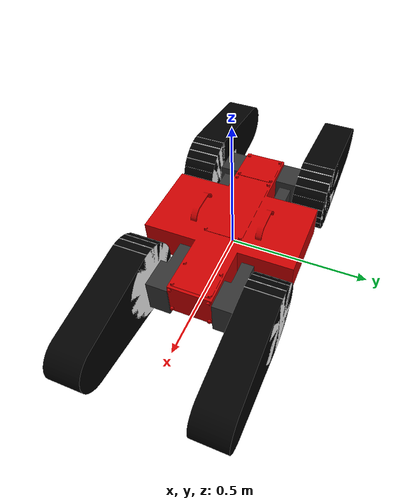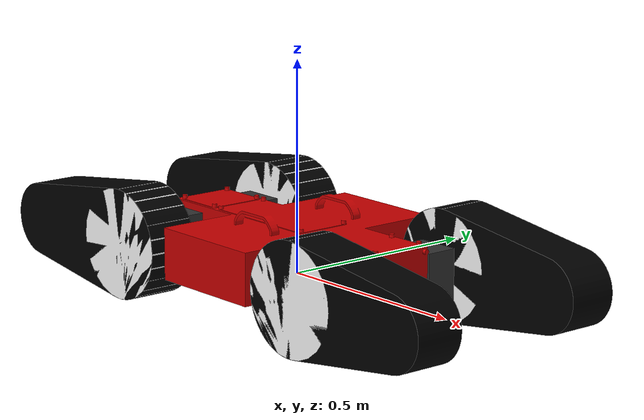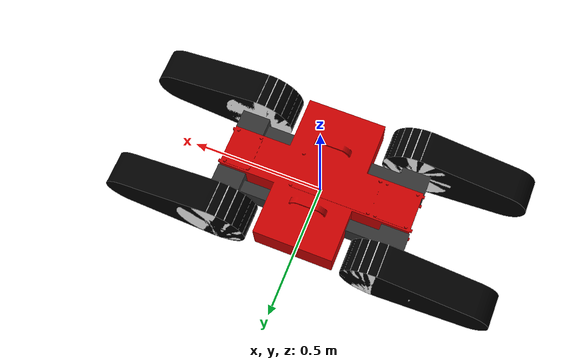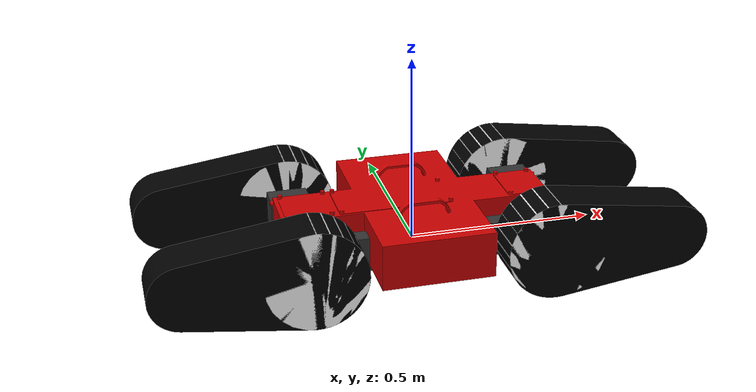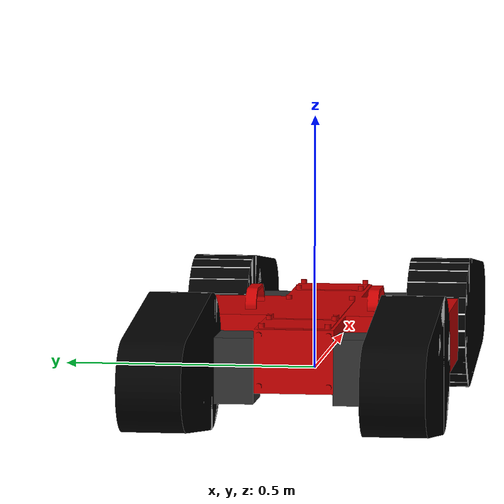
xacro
<?xml version="1.0"?>

<robot xmlns:xacro="http://www.ros.org/wiki/xacro" name="markhor">
  <!-- Include markhor robot -->
  <xacro:include filename="$(find markhor_description)/urdf/markhor.xacro"/>

  <link name="markhor_root"/>
  <xacro:property name="robot_root" value="markhor_root" />
  <xacro:markhor base_parent="${robot_root}"/>

</robot>

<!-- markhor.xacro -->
<root xmlns:xi="http://www.w3.org/2001/XInclude"
    xmlns:xacro="http://www.ros.org/wiki/xacro">

    <xacro:include filename="$(find markhor_description)/urdf/kinova_common.xacro" />

    <xacro:property name="link_base_mesh" value="mk_link_base"/>
    <xacro:property name="link_base_origin_rpy" value="0 0 0"/>
    <xacro:property name="link_gb_fl_mesh" value="mk_gb_fl"/>
    <xacro:property name="link_gb_fr_mesh" value="mk_gb_fr"/>
    <xacro:property name="link_gb_fr_origin_rpy" value="0 0 0"/>
    <xacro:property name="link_gb_rl_mesh" value="mk_gb_fr"/>
    <xacro:property name="link_gb_rr_mesh" value="mk_gb_fl"/>
    <xacro:property name="link_gb_material" value="grey"/>
    <xacro:property name="link_flip_fl_mesh" value="mk_flip"/>
    <xacro:property name="link_flip_fr_mesh" value="mk_flip"/>
    <xacro:property name="link_flip_rl_mesh" value="mk_flip"/>
    <xacro:property name="link_flip_rr_mesh" value="mk_flip"/>
    <xacro:property name="link_flip_material" value="black"/>

    <xacro:property name="joint_base" value="joint_base"/>
    <xacro:property name="joint_base_type" value="fixed"/>
    <xacro:property name="joint_base_axis_xyz" value="0 0 0" />
    <xacro:property name="joint_base_origin_xyz" value="0 0 0" />
    <xacro:property name="joint_base_origin_rpy" value="${pi} 0 0" />

    <xacro:property name="joint_gb_fl" value="joint_gb_fl"/>
    <xacro:property name="joint_gb_fl_type" value="fixed"/>
    <xacro:property name="joint_gb_fl_axis_xyz" value="0 0 0" />
    <xacro:property name="joint_gb_fl_origin_xyz" value="0.31115000 -0.07620000 -0.05318760" />
    <xacro:property name="joint_gb_fl_origin_rpy" value="0 0 ${-pi/2}" />

    <xacro:property name="joint_gb_fr" value="joint_gb_fr"/>
    <xacro:property name="joint_gb_fr_type" value="fixed"/>
    <xacro:property name="joint_gb_fr_axis_xyz" value="0 0 0" />
    <xacro:property name="joint_gb_fr_origin_xyz" value="0.31115000 0.07620000 -0.05318760" />
    <xacro:property name="joint_gb_fr_origin_rpy" value="0 0 ${-pi/2}" />

    <xacro:property name="joint_gb_rl" value="joint_gb_rl"/>
    <xacro:property name="joint_gb_rl_type" value="fixed"/>
    <xacro:property name="joint_gb_rl_axis_xyz" value="0 0 0" />
    <xacro:property name="joint_gb_rl_origin_xyz" value="-0.31115000 -0.07620000 -0.05318760" />
    <xacro:property name="joint_gb_rl_origin_rpy" value="0 0 ${pi/2}" />

    <xacro:property name="joint_gb_rr" value="joint_gb_rr"/>
    <xacro:property name="joint_gb_rr_type" value="fixed"/>
    <xacro:property name="joint_gb_rr_axis_xyz" value="0 0 0" />
    <xacro:property name="joint_gb_rr_origin_xyz" value="-0.31115000 0.07620000 -0.05318760" />
    <xacro:property name="joint_gb_rr_origin_rpy" value="0 0 ${pi/2}" />

    <xacro:property name="joint_flip_fl" value="joint_flip_fl" />
    <xacro:property name="joint_flip_fl_type" value="revolute" />
    <xacro:property name="joint_flip_fl_axis_xyz" value="1 0 0" />
    <xacro:property name="joint_flip_fl_origin_xyz" value="0.1468283 0 0" />
    <xacro:property name="joint_flip_fl_origin_rpy" value="0 0 0" />
    <xacro:property name="joint_flip_fl_lower_limit" value="${-pi/2}"/>
    <xacro:property name="joint_flip_fl_upper_limit" value="${pi/2}" />
    <xacro:property name="joint_flip_fl_velocity_limit" value="16.75" />
    <xacro:property name="joint_flip_fl_torque_limit" value="184" />

    <xacro:property name="joint_flip_fr" value="joint_flip_fr" />
    <xacro:property name="joint_flip_fr_type" value="revolute" />
    <xacro:property name="joint_flip_fr_axis_xyz" value="1 0 0" />
    <xacro:property name="joint_flip_fr_origin_xyz" value="-0.1468283 0 0" />
    <xacro:property name="joint_flip_fr_origin_rpy" value="0 0 0" />
    <xacro:property name="joint_flip_fr_lower_limit" value="${-pi/2}" />
    <xacro:property name="joint_flip_fr_upper_limit" value="${pi/2}" />
    <xacro:property name="joint_flip_fr_velocity_limit" value="16.75" />
    <xacro:property name="joint_flip_fr_torque_limit" value="184" />

    <xacro:property name="joint_flip_rl" value="joint_flip_rl" />
    <xacro:property name="joint_flip_rl_type" value="revolute" />
    <xacro:property name="joint_flip_rl_axis_xyz" value="1 0 0" />
    <xacro:property name="joint_flip_rl_origin_xyz" value="-0.1468283 0 0" />
    <xacro:property name="joint_flip_rl_origin_rpy" value="0 0 0" />
    <xacro:property name="joint_flip_rl_lower_limit" value="${-pi/2}" />
    <xacro:property name="joint_flip_rl_upper_limit" value="${pi/2}" />
    <xacro:property name="joint_flip_rl_velocity_limit" value="16.75" />
    <xacro:property name="joint_flip_rl_torque_limit" value="184" />

    <xacro:property name="joint_flip_rr" value="joint_flip_rr" />
    <xacro:property name="joint_flip_rr_type" value="revolute" />
    <xacro:property name="joint_flip_rr_axis_xyz" value="1 0 0" />
    <xacro:property name="joint_flip_rr_origin_xyz" value="0.1468283 0 0" />
    <xacro:property name="joint_flip_rr_origin_rpy" value="0 0 0" />
    <xacro:property name="joint_flip_rr_lower_limit" value="${-pi/2}" />
    <xacro:property name="joint_flip_rr_upper_limit" value="${pi/2}" />
    <xacro:property name="joint_flip_rr_velocity_limit" value="16.75" />
    <xacro:property name="joint_flip_rr_torque_limit" value="184" />

    <xacro:property name="joint_track_fl" value="joint_track_fl" />
    <xacro:property name="joint_track_fl_type" value="continuous" />
    <xacro:property name="joint_track_fl_axis_xyz" value="0 0 0" />
    <xacro:property name="joint_track_fl_origin_xyz" value="0 0 0" />
    <xacro:property name="joint_track_fl_origin_rpy" value="${pi/2} ${pi/2} 0" />
    <xacro:property name="joint_track_fl_velocity_limit" value="5.34" />
    <xacro:property name="joint_track_fl_torque_limit" value="94.5" />

    <xacro:property name="joint_track_fr" value="joint_track_fr" />
    <xacro:property name="joint_track_fr_type" value="continuous" />
    <xacro:property name="joint_track_fr_axis_xyz" value="0 0 0" />
    <xacro:property name="joint_track_fr_origin_xyz" value="0 0 0" />
    <xacro:property name="joint_track_fr_origin_rpy" value="${pi/2} ${pi/2} 0" />
    <xacro:property name="joint_track_fr_velocity_limit" value="5.34" />
    <xacro:property name="joint_track_fr_torque_limit" value="94.5" />

    <xacro:property name="joint_track_rl" value="joint_track_rl" />
    <xacro:property name="joint_track_rl_type" value="continuous" />
    <xacro:property name="joint_track_rl_axis_xyz" value="0 0 0" />
    <xacro:property name="joint_track_rl_origin_xyz" value="0 0 0" />
    <xacro:property name="joint_track_rl_origin_rpy" value="${pi/2} ${pi/2} 0" />
    <xacro:property name="joint_track_rl_velocity_limit" value="5.34" />
    <xacro:property name="joint_track_rl_torque_limit" value="94.5" />

    <xacro:property name="joint_track_rr" value="joint_track_rr" />
    <xacro:property name="joint_track_rr_type" value="continuous" />
    <xacro:property name="joint_track_rr_axis_xyz" value="0 0 0" />
    <xacro:property name="joint_track_rr_origin_xyz" value="0 0 0" />
    <xacro:property name="joint_track_rr_origin_rpy" value="${pi/2} ${pi/2} 0" />
    <xacro:property name="joint_track_rr_velocity_limit" value="5.34" />
    <xacro:property name="joint_track_rr_torque_limit" value="94.5" />

    <!-- Front Camera -->
    <xacro:property name="joint_front_cam" value="front_cam" />
    <xacro:property name="joint_front_cam_type" value="fixed" />
    <xacro:property name="joint_front_cam_axis_xyz" value="0 0 0" />
    <xacro:property name="joint_front_cam_origin_xyz" value="0.35864800 0 -0.03810000" />
    <xacro:property name="joint_front_cam_origin_rpy" value="0 ${pi/2} 0" />

    <!-- Rear Camera -->
    <xacro:property name="joint_rear_cam" value="rear_cam" />
    <xacro:property name="joint_rear_cam_type" value="fixed" />
    <xacro:property name="joint_rear_cam_axis_xyz" value="0 0 0" />
    <xacro:property name="joint_rear_cam_origin_xyz" value="-0.35864800 0 -0.03810000" />
    <xacro:property name="joint_rear_cam_origin_rpy" value="0 ${-pi/2} 0" />

    <!-- Anchor for a robotic arm -->
    <xacro:property name="joint_arm_root" value="arm_root" />
    <xacro:property name="joint_arm_root_type" value="fixed" />
    <xacro:property name="joint_arm_root_axis_xyz" value="0 0 0" />
    <xacro:property name="joint_arm_root_origin_xyz" value="0.17394875 0 -0.12291060" />
    <xacro:property name="joint_arm_root_origin_rpy" value="${pi} 0 0" />

    <!-- LiDAR -->
    <xacro:property name="joint_lidar" value="lidar" />
    <xacro:property name="joint_lidar_type" value="fixed" />
    <xacro:property name="joint_lidar_axis_xyz" value="0 0 0" />
    <xacro:property name="joint_lidar_origin_xyz" value="0.32034017 0 -0.1393156" />
    <xacro:property name="joint_lidar_origin_rpy" value="${pi} 0 0" />

    <!-- FL Wheel -->
    <xacro:property name="fl_wheel_name" value="fl_wheel"/>
    <xacro:property name="fl_wheel_rad" value="0.1318"/>
    <xacro:property name="fl_wheel_width" value="0.12065"/>

    <!-- FR Wheel -->
    <xacro:property name="fr_wheel_name" value="fr_wheel"/>
    <xacro:property name="fr_wheel_rad" value="0.1318"/>
    <xacro:property name="fr_wheel_width" value="0.12065"/>

    <!-- RL Wheel -->
    <xacro:property name="rl_wheel_name" value="rl_wheel"/>
    <xacro:property name="rl_wheel_rad" value="0.1318"/>
    <xacro:property name="rl_wheel_width" value="0.12065"/>

    <!-- RR Wheel -->
    <xacro:property name="rr_wheel_name" value="rr_wheel"/>
    <xacro:property name="rr_wheel_rad" value="0.1318"/>
    <xacro:property name="rr_wheel_width" value="0.12065"/>

    <xacro:macro name="markhor" params="base_parent prefix:=markhor">

        <xacro:kinova_link link_name="${prefix}_link_base" link_mesh="${link_base_mesh}" link_origin_rpy="${link_base_origin_rpy}"/>
        <xacro:kinova_joint joint_name="${prefix}_joint_base" type="${joint_base_type}" parent="${base_parent}" child="${prefix}_link_base" joint_axis_xyz="${joint_base_axis_xyz}" joint_origin_xyz="${joint_base_origin_xyz}" joint_origin_rpy="${joint_base_origin_rpy}" joint_lower_limit="0" joint_upper_limit="0" joint_velocity_limit="0" joint_torque_limit="0" fixed="true"/>

        <xacro:kinova_link link_name="${prefix}_link_gb_fl" link_mesh="${link_gb_fl_mesh}" link_material="${link_gb_material}"/>
        <xacro:kinova_joint joint_name="${prefix}_joint_gb_fl" type="${joint_gb_fl_type}" parent="${prefix}_link_base" child="${prefix}_link_gb_fl" joint_axis_xyz="${joint_gb_fl_axis_xyz}" joint_origin_xyz="${joint_gb_fl_origin_xyz}" joint_origin_rpy="${joint_gb_fl_origin_rpy}" joint_lower_limit="0" joint_upper_limit="0" joint_velocity_limit="0" joint_torque_limit="0" fixed="true"/>

        <xacro:kinova_link link_name="${prefix}_link_gb_fr" link_mesh="${link_gb_fr_mesh}" link_origin_rpy="${link_gb_fr_origin_rpy}" link_material="${link_gb_material}"/>
        <xacro:kinova_joint joint_name="${prefix}_joint_gb_fr" type="${joint_gb_fr_type}" parent="${prefix}_link_base" child="${prefix}_link_gb_fr" joint_axis_xyz="${joint_gb_fr_axis_xyz}" joint_origin_xyz="${joint_gb_fr_origin_xyz}" joint_origin_rpy="${joint_gb_fr_origin_rpy}" joint_lower_limit="0" joint_upper_limit="0" joint_velocity_limit="0" joint_torque_limit="0" fixed="true"/>

        <xacro:kinova_link link_name="${prefix}_link_gb_rl" link_mesh="${link_gb_rl_mesh}" link_material="${link_gb_material}"/>
        <xacro:kinova_joint joint_name="${prefix}_joint_gb_rl" type="${joint_gb_rl_type}" parent="${prefix}_link_base" child="${prefix}_link_gb_rl" joint_axis_xyz="${joint_gb_rl_axis_xyz}" joint_origin_xyz="${joint_gb_rl_origin_xyz}" joint_origin_rpy="${joint_gb_rl_origin_rpy}" joint_lower_limit="0" joint_upper_limit="0" joint_velocity_limit="0" joint_torque_limit="0" fixed="true"/>

        <xacro:kinova_link link_name="${prefix}_link_gb_rr" link_mesh="${link_gb_rr_mesh}" link_material="${link_gb_material}"/>
        <xacro:kinova_joint joint_name="${prefix}_joint_gb_rr" type="${joint_gb_rr_type}" parent="${prefix}_link_base" child="${prefix}_link_gb_rr" joint_axis_xyz="${joint_gb_rr_axis_xyz}" joint_origin_xyz="${joint_gb_rr_origin_xyz}" joint_origin_rpy="${joint_gb_rr_origin_rpy}" joint_lower_limit="0" joint_upper_limit="0" joint_velocity_limit="0" joint_torque_limit="0" fixed="true"/>

        <!-- flipper angle frame -->
        <xacro:kinova_link link_name="${prefix}_link_flip_fl" link_mesh="${link_flip_fl_mesh}" link_material="${link_flip_material}"/>
        <xacro:kinova_joint joint_name="${prefix}_joint_flip_fl" type="${joint_flip_fl_type}" parent="${prefix}_link_gb_fl" child="${prefix}_link_flip_fl" joint_axis_xyz="${joint_flip_fl_axis_xyz}" joint_origin_xyz="${joint_flip_fl_origin_xyz}" joint_origin_rpy="${joint_flip_fl_origin_rpy}" joint_lower_limit="${joint_flip_fl_lower_limit}" joint_upper_limit="${joint_flip_fl_upper_limit}" joint_velocity_limit="${joint_flip_fl_velocity_limit}" joint_torque_limit="${joint_flip_fl_torque_limit}"/>

        <xacro:kinova_link link_name="${prefix}_link_flip_fr" link_mesh="${link_flip_fr_mesh}" link_material="${link_flip_material}"/>
        <xacro:kinova_joint joint_name="${prefix}_joint_flip_fr" type="${joint_flip_fr_type}" parent="${prefix}_link_gb_fr" child="${prefix}_link_flip_fr" joint_axis_xyz="${joint_flip_fr_axis_xyz}" joint_origin_xyz="${joint_flip_fr_origin_xyz}" joint_origin_rpy="${joint_flip_fr_origin_rpy}" joint_lower_limit="${joint_flip_fr_lower_limit}" joint_upper_limit="${joint_flip_fr_upper_limit}" joint_velocity_limit="${joint_flip_fr_velocity_limit}" joint_torque_limit="${joint_flip_fr_torque_limit}"/>

        <xacro:kinova_link link_name="${prefix}_link_flip_rl" link_mesh="${link_flip_rl_mesh}" link_material="${link_flip_material}"/>
        <xacro:kinova_joint joint_name="${prefix}_joint_flip_rl" type="${joint_flip_rl_type}" parent="${prefix}_link_gb_rl" child="${prefix}_link_flip_rl" joint_axis_xyz="${joint_flip_rl_axis_xyz}" joint_origin_xyz="${joint_flip_rl_origin_xyz}" joint_origin_rpy="${joint_flip_rl_origin_rpy}" joint_lower_limit="${joint_flip_rl_lower_limit}" joint_upper_limit="${joint_flip_rl_upper_limit}" joint_velocity_limit="${joint_flip_rl_velocity_limit}" joint_torque_limit="${joint_flip_rl_torque_limit}"/>

        <xacro:kinova_link link_name="${prefix}_link_flip_rr" link_mesh="${link_flip_rr_mesh}" link_material="${link_flip_material}"/>
        <xacro:kinova_joint joint_name="${prefix}_joint_flip_rr" type="${joint_flip_rr_type}" parent="${prefix}_link_gb_rr" child="${prefix}_link_flip_rr" joint_axis_xyz="${joint_flip_rr_axis_xyz}" joint_origin_xyz="${joint_flip_rr_origin_xyz}" joint_origin_rpy="${joint_flip_rr_origin_rpy}" joint_lower_limit="${joint_flip_rr_lower_limit}" joint_upper_limit="${joint_flip_rr_upper_limit}" joint_velocity_limit="${joint_flip_rr_velocity_limit}" joint_torque_limit="${joint_flip_rr_torque_limit}"/>

        <!-- Anchor for the front camera -->
        <xacro:kinova_virtual_link link_name="${prefix}_link_front_cam"/>
        <xacro:kinova_virtual_joint joint_name="${prefix}_joint_front_cam" type="${joint_front_cam_type}" parent="${prefix}_link_base" child="${prefix}_link_front_cam" joint_axis_xyz="${joint_front_cam_axis_xyz}" joint_origin_xyz="${joint_front_cam_origin_xyz}" joint_origin_rpy="${joint_front_cam_origin_rpy}" joint_lower_limit="0" joint_upper_limit="0"/>

        <!-- Anchor for the rear camera -->
        <xacro:kinova_virtual_link link_name="${prefix}_link_rear_cam"/>
        <xacro:kinova_virtual_joint joint_name="${prefix}_joint_rear_cam" type="${joint_rear_cam_type}" parent="${prefix}_link_base" child="${prefix}_link_rear_cam" joint_axis_xyz="${joint_rear_cam_axis_xyz}" joint_origin_xyz="${joint_rear_cam_origin_xyz}" joint_origin_rpy="${joint_rear_cam_origin_rpy}" joint_lower_limit="0" joint_upper_limit="0"/>

        <!-- Anchor for a robotic arm -->
        <xacro:kinova_virtual_link link_name="${prefix}_link_arm_root"/>
        <xacro:kinova_virtual_joint joint_name="${prefix}_joint_arm_root" type="${joint_arm_root_type}" parent="${prefix}_link_base" child="${prefix}_link_arm_root" joint_axis_xyz="${joint_arm_root_axis_xyz}" joint_origin_xyz="${joint_arm_root_origin_xyz}" joint_origin_rpy="${joint_arm_root_origin_rpy}" joint_lower_limit="0" joint_upper_limit="0"/>

        <!-- Anchor for the LiDAR -->
        <xacro:kinova_virtual_link link_name="${prefix}_link_lidar"/>
        <xacro:kinova_virtual_joint joint_name="${prefix}_joint_lidar" type="${joint_lidar_type}" parent="${prefix}_link_base" child="${prefix}_link_lidar" joint_axis_xyz="${joint_lidar_axis_xyz}" joint_origin_xyz="${joint_lidar_origin_xyz}" joint_origin_rpy="${joint_lidar_origin_rpy}" joint_lower_limit="0" joint_upper_limit="0"/>

        <!-- FL Wheel -->
        <xacro:sim_wheel wheel_name="${fl_wheel_name}" wheel_rad="${fl_wheel_rad}" wheel_width="${fl_wheel_width}" wheel_parent="${prefix}_link_flip_fl"/>

        <!-- FR Wheel -->
        <xacro:sim_wheel wheel_name="${fr_wheel_name}" wheel_rad="${fr_wheel_rad}" wheel_width="${fr_wheel_width}" wheel_parent="${prefix}_link_flip_fr"/>

        <!-- RL Wheel -->
        <xacro:sim_wheel wheel_name="${rl_wheel_name}" wheel_rad="${rl_wheel_rad}" wheel_width="${rl_wheel_width}" wheel_parent="${prefix}_link_flip_rl"/>

        <!-- RR Wheel -->
        <xacro:sim_wheel wheel_name="${rr_wheel_name}" wheel_rad="${rr_wheel_rad}" wheel_width="${rr_wheel_width}" wheel_parent="${prefix}_link_flip_rr"/>

    </xacro:macro>

</root>

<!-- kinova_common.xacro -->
<!-- Adapted from the kinova-ros pkg for use by Club Capra on the markhor robotic platform -->

<root xmlns:xi="http://www.w3.org/2001/XInclude"
  xmlns:gazebo="http://playerstage.sourceforge.net/gazebo/xmlschema/#gz"
  xmlns:model="http://playerstage.sourceforge.net/gazebo/xmlschema/#model"
  xmlns:sensor="http://playerstage.sourceforge.net/gazebo/xmlschema/#sensor"
  xmlns:body="http://playerstage.sourceforge.net/gazebo/xmlschema/#body"
  xmlns:geom="http://playerstage.sourceforge.net/gazebo/xmlschema/#geom"
  xmlns:joint="http://playerstage.sourceforge.net/gazebo/xmlschema/#joint"
  xmlns:controller="http://playerstage.sourceforge.net/gazebo/xmlschema/#controller"
  xmlns:interface="http://playerstage.sourceforge.net/gazebo/xmlschema/#interface"
  xmlns:rendering="http://playerstage.sourceforge.net/gazebo/xmlschema/#rendering"
  xmlns:renderable="http://playerstage.sourceforge.net/gazebo/xmlschema/#renderable"
  xmlns:physics="http://playerstage.sourceforge.net/gazebo/xmlschema/#physics"
  xmlns:xacro="http://www.ros.org/wiki/xacro">

  <xacro:include filename="$(find markhor_description)/urdf/markhor_inertial.xacro" />
  <xacro:include filename="$(find markhor_description)/urdf/materials.xacro"/>

  <xacro:macro name="kinova_link" params="link_name link_mesh link_origin_xyz:='0 0 0' link_origin_rpy:='0 0 0' link_material:='red' has_collision_mesh:=false">
    <link name="${link_name}">
      <visual>
        <geometry>
          <mesh filename="package://markhor_description/meshes/visual/${link_mesh}.stl"/>
        </geometry>
        <origin xyz="${link_origin_xyz}" rpy="${link_origin_rpy}"/>
        <material name="${link_material}"/>
      </visual>
      <collision>
        <geometry>
          <xacro:if value="${has_collision_mesh}">
            <mesh filename="package://markhor_description/meshes/collision/${link_mesh}.stl"/>
          </xacro:if>
          <xacro:unless value="${has_collision_mesh}">
            <mesh filename="package://markhor_description/meshes/visual/${link_mesh}.stl"/>
          </xacro:unless>
        </geometry>
        <origin xyz="${link_origin_xyz}" rpy="${link_origin_rpy}"/>
      </collision>
      <xacro:markhor_inertial link_name="${link_name}"/>
    </link>
  </xacro:macro>

  <xacro:macro name="kinova_joint" params="joint_name type parent child joint_axis_xyz joint_origin_xyz joint_origin_rpy joint_lower_limit joint_upper_limit joint_velocity_limit joint_torque_limit fixed:=false">
    <joint name="${joint_name}" type="${type}">
      <parent link="${parent}"/>
      <child link="${child}"/>
      <axis xyz="${joint_axis_xyz}"/>
      <limit effort="${joint_torque_limit}" velocity="${joint_velocity_limit}" lower="${joint_lower_limit}" upper="${joint_upper_limit}"/>
      <origin xyz="${joint_origin_xyz}" rpy="${joint_origin_rpy}"/>
      <dynamics damping="0.0" friction="0.0"/>
    </joint>
    <xacro:unless value="${fixed}">
      <transmission name="${joint_name}_trans">
        <type>transmission_interface/SimpleTransmission</type>
        <joint name="${joint_name}">
          <hardwareInterface>hardware_interface/EffortJointInterface</hardwareInterface>
        </joint>
        <actuator name="${joint_name}_actuator">
          <hardwareInterface>hardware_interface/EffortJointInterface</hardwareInterface>
          <mechanicalReduction>1</mechanicalReduction>
        </actuator>
      </transmission>
      <!--For torque sensing in simulation-->
    </xacro:unless>
  </xacro:macro>

  <xacro:macro name="kinova_virtual_link" params="link_name">
    <link name="${link_name}"/>
  </xacro:macro>

  <xacro:macro name="kinova_virtual_joint" params="joint_name type parent child joint_axis_xyz joint_origin_xyz joint_origin_rpy joint_lower_limit joint_upper_limit">
    <joint name="${joint_name}" type="${type}">
      <parent link="${parent}"/>
      <child link="${child}"/>
      <axis xyz="${joint_axis_xyz}"/>
      <limit effort="2000" velocity="1" lower="${joint_lower_limit}" upper="${joint_upper_limit}"/>
      <origin xyz="${joint_origin_xyz}" rpy="${joint_origin_rpy}"/>
    </joint>
  </xacro:macro>

  <xacro:macro name="sim_wheel" params="wheel_name wheel_rad wheel_width wheel_parent">
    <link name="${wheel_name}_link">
      <visual>
        <geometry>
          <cylinder length="${wheel_width}" radius="${wheel_rad}"/>
        </geometry>
        <origin xyz="0 0 0" rpy="0 ${pi/2} 0"/>
        <material name="white"/>
      </visual>
    </link>
    <joint name="${wheel_name}_joint" type="continuous">
      <parent link="${wheel_parent}"/>
      <child link="${wheel_name}_link"/>
      <axis xyz="1 0 0"/>
    </joint>
  </xacro:macro>

</root>

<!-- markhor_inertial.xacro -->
<root xmlns:xi="http://www.w3.org/2001/XInclude"
    xmlns:gazebo="http://playerstage.sourceforge.net/gazebo/xmlschema/#gz"
    xmlns:model="http://playerstage.sourceforge.net/gazebo/xmlschema/#model"
    xmlns:sensor="http://playerstage.sourceforge.net/gazebo/xmlschema/#sensor"
    xmlns:body="http://playerstage.sourceforge.net/gazebo/xmlschema/#body"
    xmlns:geom="http://playerstage.sourceforge.net/gazebo/xmlschema/#geom"
    xmlns:joint="http://playerstage.sourceforge.net/gazebo/xmlschema/#joint"
    xmlns:controller="http://playerstage.sourceforge.net/gazebo/xmlschema/#controller"
    xmlns:interface="http://playerstage.sourceforge.net/gazebo/xmlschema/#interface"
    xmlns:rendering="http://playerstage.sourceforge.net/gazebo/xmlschema/#rendering"
    xmlns:renderable="http://playerstage.sourceforge.net/gazebo/xmlschema/#renderable"
    xmlns:physics="http://playerstage.sourceforge.net/gazebo/xmlschema/#physics"
    xmlns:xacro="http://www.ros.org/wiki/xacro">

    <xacro:macro name="markhor_inertial" params="link_name">
        <!-- frame -->
        <xacro:if value="${link_name == 'markhor_link_base'}">
            <inertial>
                <mass value="16.111" />
                <origin xyz="-0.00002529 0.00000008 -0.06049447" rpy="0 0 0"/>
                <inertia ixx="0.385006414" ixy="0.0000696244868" ixz="-0.000181517937" iyy="0.624959190" iyz="0.000000162897534" izz="0.798949961"/>
            </inertial>
        </xacro:if>

        <!-- FL Gearbox -->
        <xacro:if value="${link_name == 'markhor_link_gb_fl'}">
            <inertial>
                <mass value="2.5"/>
                <origin xyz="0.038 -0.038 0.014" rpy="0 0 0"/>
                <inertia ixx="6.06448598e-2" ixy="1.93186915e-4" ixz="-1.57873663e-5" iyy="1.82869143e-2" iyz="2.81755463e-3" izz="5.13408129e-2"/>
            </inertial>
        </xacro:if>

        <!-- FR Gearbox -->
        <xacro:if value="${link_name == 'markhor_link_gb_fr'}">
            <inertial>
                <mass value="2.5"/>
                <origin xyz="-0.038 -0.038 0.014" rpy="0 0 0"/>
                <inertia ixx="6.06448598e-2" ixy="-1.93186915e-4" ixz="1.57873663e-5" iyy="1.82869143e-2" iyz="2.81755463e-3" izz="5.13408129e-2"/>
            </inertial>
        </xacro:if>

        <!-- RL Gearbox -->
        <xacro:if value="${link_name == 'markhor_link_gb_rl'}">
            <inertial>
                <mass value="2.5"/>
                <origin xyz="-0.038 -0.038 0.014" rpy="0 0 0"/>
                <inertia ixx="6.06448598e-2" ixy="-1.93186915e-4" ixz="1.57873663e-5" iyy="1.82869143e-2" iyz="2.81755463e-3" izz="5.13408129e-2"/>
            </inertial>
        </xacro:if>

        <!-- RR Gearbox -->
        <xacro:if value="${link_name == 'markhor_link_gb_rr'}">
            <inertial>
                <mass value="2.5"/>
                <origin xyz="0.038 -0.038 0.014" rpy="0 0 0"/>
                <inertia ixx="6.06448598e-2" ixy="1.93186915e-4" ixz="-1.57873663e-5" iyy="1.82869143e-2" iyz="2.81755463e-3" izz="5.13408129e-2"/>
            </inertial>
        </xacro:if>

        <!-- FL Flipper -->
        <xacro:if value="${link_name == 'markhor_link_flip_fl'}">
            <inertial>
                <mass value="6.9"/>
                <origin xyz="0 0.116 0" rpy="0 0 0"/>
                <inertia ixx="0.268046334" ixy="0.000960466048" ixz="0.000262590776" iyy="0.0573569235" iyz="0.0000904647719" izz="0.232597105"/>
            </inertial>
        </xacro:if>

        <!-- FR Flipper -->
        <xacro:if value="${link_name == 'markhor_link_flip_fr'}">
            <inertial>
                <mass value="6.9"/>
                <origin xyz="0 0.116 0" rpy="0 0 0"/>
                <inertia ixx="0.268046334" ixy="0.000960466048" ixz="0.000262590776" iyy="0.0573569235" iyz="0.0000904647719" izz="0.232597105"/>
            </inertial>
        </xacro:if>

        <!-- RL Flipper -->
        <xacro:if value="${link_name == 'markhor_link_flip_rl'}">
            <inertial>
                <mass value="6.9"/>
                <origin xyz="0 0.116 0" rpy="0 0 0"/>
                <inertia ixx="0.268046334" ixy="0.000960466048" ixz="0.000262590776" iyy="0.0573569235" iyz="0.0000904647719" izz="0.232597105"/>
            </inertial>
        </xacro:if>

        <!-- RR Flipper -->
        <xacro:if value="${link_name == 'markhor_link_flip_rr'}">
            <inertial>
                <mass value="6.9"/>
                <origin xyz="0 0.116 0" rpy="0 0 0"/>
                <inertia ixx="0.268046334" ixy="0.000960466048" ixz="0.000262590776" iyy="0.0573569235" iyz="0.0000904647719" izz="0.232597105"/>
            </inertial>
        </xacro:if>

    </xacro:macro>
</root>

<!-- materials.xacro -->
<root xmlns:xi="http://www.w3.org/2001/XInclude"
  xmlns:gazebo="http://playerstage.sourceforge.net/gazebo/xmlschema/#gz"
  xmlns:model="http://playerstage.sourceforge.net/gazebo/xmlschema/#model"
  xmlns:sensor="http://playerstage.sourceforge.net/gazebo/xmlschema/#sensor"
  xmlns:body="http://playerstage.sourceforge.net/gazebo/xmlschema/#body"
  xmlns:geom="http://playerstage.sourceforge.net/gazebo/xmlschema/#geom"
  xmlns:joint="http://playerstage.sourceforge.net/gazebo/xmlschema/#joint"
  xmlns:controller="http://playerstage.sourceforge.net/gazebo/xmlschema/#controller"
  xmlns:interface="http://playerstage.sourceforge.net/gazebo/xmlschema/#interface"
  xmlns:rendering="http://playerstage.sourceforge.net/gazebo/xmlschema/#rendering"
  xmlns:renderable="http://playerstage.sourceforge.net/gazebo/xmlschema/#renderable"
  xmlns:physics="http://playerstage.sourceforge.net/gazebo/xmlschema/#physics"
  xmlns:xacro="http://www.ros.org/wiki/xacro">

<material name="black">
  <color rgba="0.0 0.0 0.0 1.0"/>
</material>

<material name="blue">
  <color rgba="0.0 0.0 0.8 1.0"/>
</material>

<material name="green">
  <color rgba="0.0 0.8 0.0 1.0"/>
</material>

<material name="grey">
  <color rgba="0.2 0.2 0.2 1.0"/>
</material>

<material name="orange">
  <color rgba="${255/255} ${108/255} ${10/255} 1.0"/>
</material>

<material name="brown">
  <color rgba="${222/255} ${207/255} ${195/255} 1.0"/>
</material>

<material name="red">
  <color rgba="0.8 0.0 0.0 1.0"/>
</material>

<material name="white">
  <color rgba="1.0 1.0 1.0 1.0"/>
</material>

</root>
